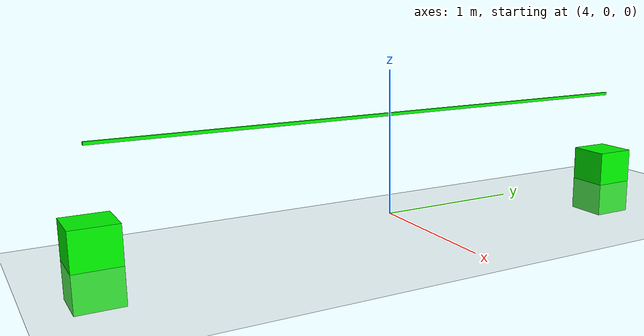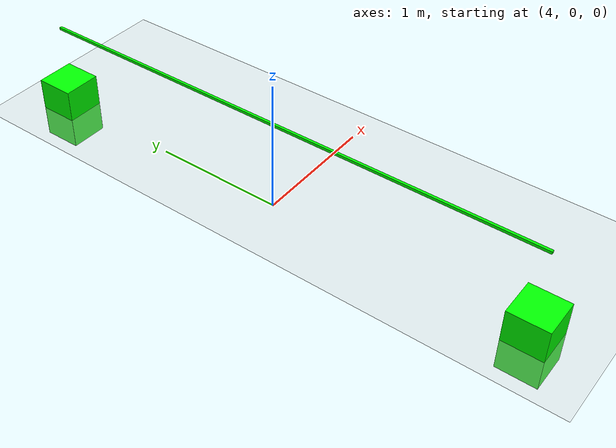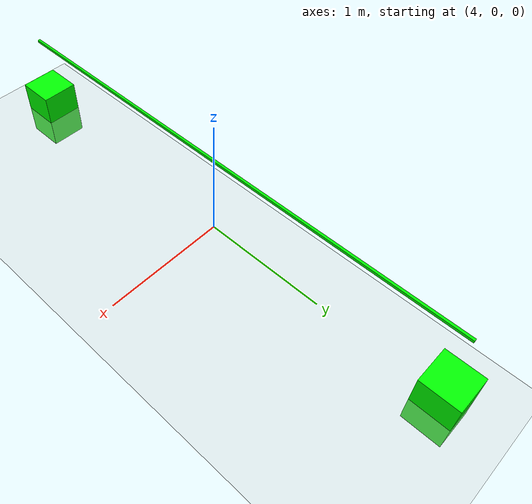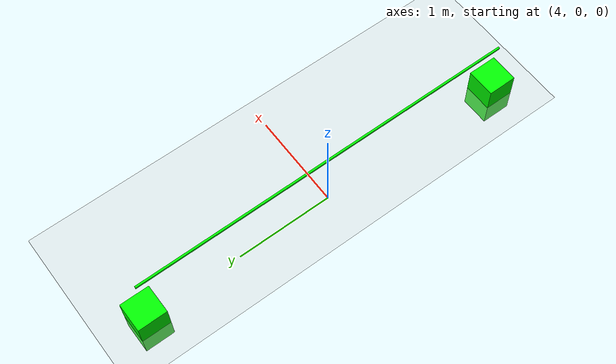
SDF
<?xml version="1.0"?>
<sdf version='1.9'>
    <world name='simple'>
        <physics name='1ms' type='ignored'>
            <max_step_size>0.001</max_step_size>
            <real_time_factor>1</real_time_factor>
            <real_time_update_rate>1000</real_time_update_rate>
        </physics>
        <plugin name='ignition::gazebo::systems::Physics' filename='ignition-gazebo-physics-system' />
        <plugin name='ignition::gazebo::systems::UserCommands'
            filename='libignition-gazebo-user-commands-system.so' />
        <plugin name='ignition::gazebo::systems::SceneBroadcaster'
            filename='ignition-gazebo-scene-broadcaster-system' />
        <plugin name='ignition::gazebo::systems::Sensors'
            filename='libignition-gazebo-sensors-system.so'>
            <render_engine>ogre2</render_engine>
        </plugin>
        <gravity>0 0 -9.8</gravity>
        <magnetic_field>6e-06 2.3e-05 -4.2e-05</magnetic_field>
        <atmosphere type='adiabatic' />
        <scene>
            <ambient>0.4 0.4 0.4 1</ambient>
            <background>0.7 0.7 0.7 1</background>
            <shadows>true</shadows>
        </scene>
        <model name='ground_plane'>
            <static>true</static>
            <link name='link'>
                <collision name='collision'>
                    <geometry>
                        <plane>
                            <normal>0 0 1</normal>
                            <size>1 1</size>
                        </plane>
                    </geometry>
                    <surface>
                        <friction>
                            <ode />
                        </friction>
                        <bounce />
                        <contact />
                    </surface>
                </collision>
                <visual name='visual'>
                    <geometry>
                        <plane>
                            <normal>0 0 1</normal>
                            <size>1000 1000</size>
                        </plane>
                    </geometry>
                    <material>
                        <ambient>0.8 0.8 0.8 1</ambient>
                        <diffuse>0.8 0.8 0.8 1</diffuse>
                        <specular>0.8 0.8 0.8 1</specular>
                    </material>
                </visual>
                <pose>0 0 0 0 -0 0</pose>
                <inertial>
                    <pose>0 0 0 0 -0 0</pose>
                    <mass>1</mass>
                    <inertia>
                        <ixx>1</ixx>
                        <ixy>0</ixy>
                        <ixz>0</ixz>
                        <iyy>1</iyy>
                        <iyz>0</iyz>
                        <izz>1</izz>
                    </inertia>
                </inertial>
                <enable_wind>false</enable_wind>
            </link>
            <pose>0 0 0 0 -0 0</pose>
            <self_collide>false</self_collide>
        </model>
        <model name='box_right'>
            <pose>4 -2 0 0 -0 0</pose>
            <link name='box_link'>
                <inertial>
                    <inertia>
                        <ixx>0.16666</ixx>
                        <ixy>0</ixy>
                        <ixz>0</ixz>
                        <iyy>0.16666</iyy>
                        <iyz>0</iyz>
                        <izz>0.16666</izz>
                    </inertia>
                    <mass>1</mass>
                    <pose>0 0 0 0 -0 0</pose>
                </inertial>
                <collision name='box_collision'>
                    <geometry>
                        <box>
                            <size>0.3 0.3 0.5</size>
                        </box>
                    </geometry>
                    <surface>
                        <friction>
                            <ode />
                        </friction>
                        <bounce />
                        <contact />
                    </surface>
                </collision>
                <visual name='box_visual'>
                    <geometry>
                        <box>
                            <size>0.3 0.3 0.5</size>
                        </box>
                    </geometry>
                    <material>
                        <ambient>0 1 0 1</ambient>
                        <diffuse>0 1 0 1</diffuse>
                        <specular>1 1 1 1</specular>
                    </material>
                </visual>
                <pose>0 0 0 0 -0 0</pose>
                <enable_wind>false</enable_wind>
            </link>
            <static>false</static>
            <self_collide>false</self_collide>
        </model>

        <model name='box_left'>
            <pose>4 2 0 0 -0 0</pose>
            <link name='box_link'>
                <inertial>
                    <inertia>
                        <ixx>0.16666</ixx>
                        <ixy>0</ixy>
                        <ixz>0</ixz>
                        <iyy>0.16666</iyy>
                        <iyz>0</iyz>
                        <izz>0.16666</izz>
                    </inertia>
                    <mass>1</mass>
                    <pose>0 0 0 0 -0 0</pose>
                </inertial>
                <collision name='box_collision'>
                    <geometry>
                        <box>
                            <size>0.3 0.3 0.5</size>
                        </box>
                    </geometry>
                    <surface>
                        <friction>
                            <ode />
                        </friction>
                        <bounce />
                        <contact />
                    </surface>
                </collision>
                <visual name='box_visual'>
                    <geometry>
                        <box>
                            <size>0.3 0.3 0.5</size>
                        </box>
                    </geometry>
                    <material>
                        <ambient>0.3 0.3 0.3 1</ambient>
                        <diffuse>0 1 0 1</diffuse>
                        <specular>1 1 1 1</specular>
                    </material>
                </visual>
                <pose>0 0 0 0 -0 0</pose>
                <enable_wind>false</enable_wind>
            </link>
            <static>false</static>
            <self_collide>false</self_collide>
        </model>
        <model name='box_over'>
            <pose>4 0 0.7 0 -0 0</pose>
            <link name='box_link'>
                <inertial>
                    <inertia>
                        <ixx>0.16666</ixx>
                        <ixy>0</ixy>
                        <ixz>0</ixz>
                        <iyy>0.16666</iyy>
                        <iyz>0</iyz>
                        <izz>0.16666</izz>
                    </inertia>
                    <mass>0.1</mass>
                    <pose>0 0 0 0 -0 0</pose>
                </inertial>
                <collision name='box_collision'>
                    <geometry>
                        <box>
                            <size>0.02 4 0.02</size>
                        </box>
                    </geometry>
                    <surface>
                        <friction>
                            <ode />
                        </friction>
                        <bounce />
                        <contact />
                    </surface>
                </collision>
                <visual name='box_visual'>
                    <geometry>
                        <box>
                            <size>0.02 4 0.02</size>
                        </box>
                    </geometry>
                    <material>
                        <ambient>0.3 0.3 0.3 1</ambient>
                        <diffuse>0 1 0 1</diffuse>
                        <specular>1 1 1 1</specular>
                    </material>
                </visual>
                <pose>0 0 0 0 -0 0</pose>
                <enable_wind>false</enable_wind>
            </link>
            <static>false</static>
            <self_collide>false</self_collide>
        </model>

    </world>
</sdf>
